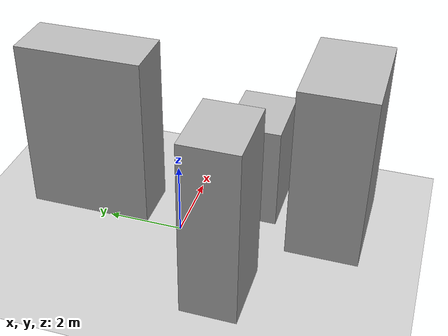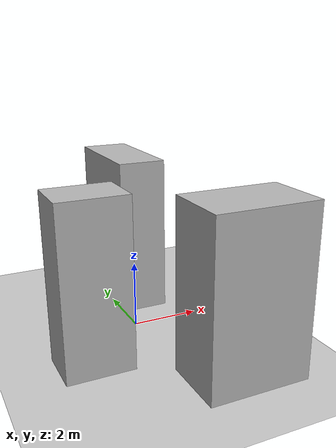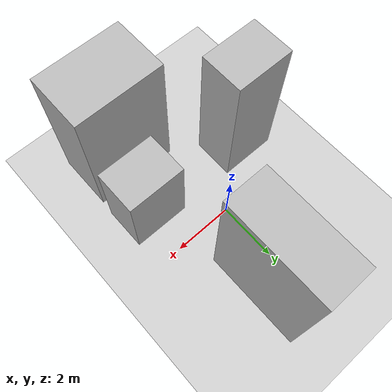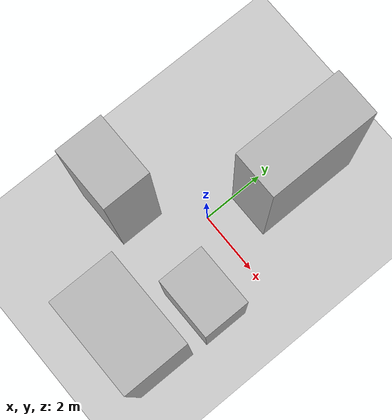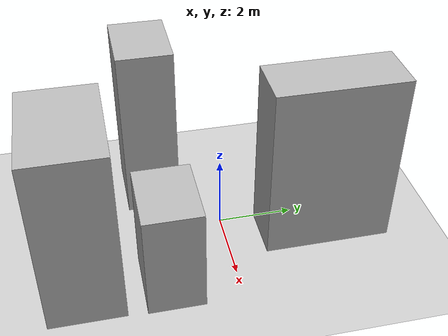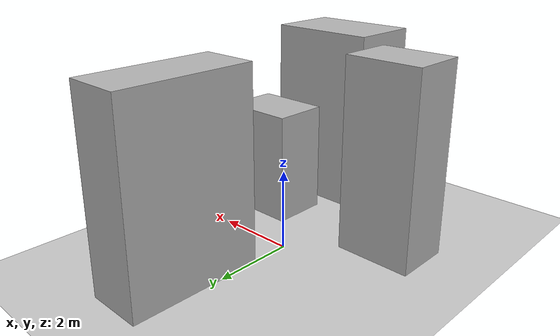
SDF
<?xml version="1.0" ?>
<sdf version="1.5">
  <world name="default">
    <gui>
      <camera name='gzclient_camera'>
        <pose>-15.00 00.00 10.67 0.00 0.53 0</pose>
      </camera>
    </gui>
    <!-- A global light source -->
    <include>
      <uri>model://sun</uri>
    </include>
    <!-- A ground plane -->
    <include>
      <uri>model://ground_plane</uri>
    </include>
    <physics name='default_physics' default='0' type='ode'>
      <gravity>0 0 -9.8066</gravity>
      <ode>
        <solver>
          <type>quick</type>
          <iters>10</iters>
          <sor>1.3</sor>
          <use_dynamic_moi_rescaling>0</use_dynamic_moi_rescaling>
        </solver>
        <constraints>
          <cfm>0</cfm>
          <erp>0.2</erp>
          <contact_max_correcting_vel>100</contact_max_correcting_vel>
          <contact_surface_layer>0.001</contact_surface_layer>
        </constraints>
      </ode>
      <max_step_size>0.004</max_step_size>
      <real_time_factor>1</real_time_factor>
      <real_time_update_rate>250</real_time_update_rate>
      <magnetic_field>6.0e-6 2.3e-5 -4.2e-5</magnetic_field>
    </physics>
	<model name ='box0'>
		<pose>0.72 2.64 2.4 0 0 0</pose>
		<link name ='link'>
		  <pose>0 0 0 0 0 0</pose>
		  <collision name ='collision'>
		    <geometry>
		      <box><size>1.44 3.36 4.8</size></box>
		    </geometry>
		  </collision>
		  <visual name ='visual'>
		    <geometry>
		      <box><size>1.44 3.36 4.8</size></box>
		    </geometry>
		  </visual>
		</link>
	  </model>
	<model name ='box1'>
		<pose>1.92 -1.68 1.44 0 0 0</pose>
		<link name ='link'>
		  <pose>0 0 0 0 0 0</pose>
		  <collision name ='collision'>
		    <geometry>
		      <box><size>1.92 1.44 2.88</size></box>
		    </geometry>
		  </collision>
		  <visual name ='visual'>
		    <geometry>
		      <box><size>1.92 1.44 2.88</size></box>
		    </geometry>
		  </visual>
		</link>
	  </model>
	<model name ='box2'>
		<pose>1.4 -3.84 2.4 0 0 0</pose>
		<link name ='link'>
		  <pose>0 0 0 0 0 0</pose>
		  <collision name ='collision'>
		    <geometry>
		      <box><size>2.88 1.92 4.8</size></box>
		    </geometry>
		  </collision>
		  <visual name ='visual'>
		    <geometry>
		      <box><size>2.88 1.92 4.8</size></box>
		    </geometry>
		  </visual>
		</link>
	  </model>
	<model name ='box3'>
		<pose>-1.92 -1.68 2.4 0 0 0</pose>
		<link name ='link'>
		  <pose>0 0 0 0 0 0</pose>
		  <collision name ='collision'>
		    <geometry>
		      <box><size>1.92 1.44 4.8</size></box>
		    </geometry>
		  </collision>
		  <visual name ='visual'>
		    <geometry>
		      <box><size>1.92 1.44 4.8</size></box>
		    </geometry>
		  </visual>
		</link>
	  </model>
  </world>
</sdf>
